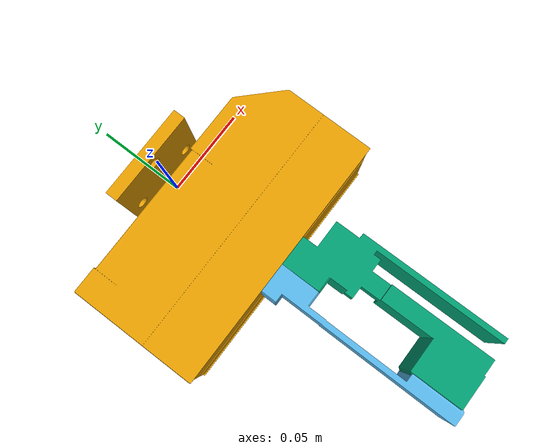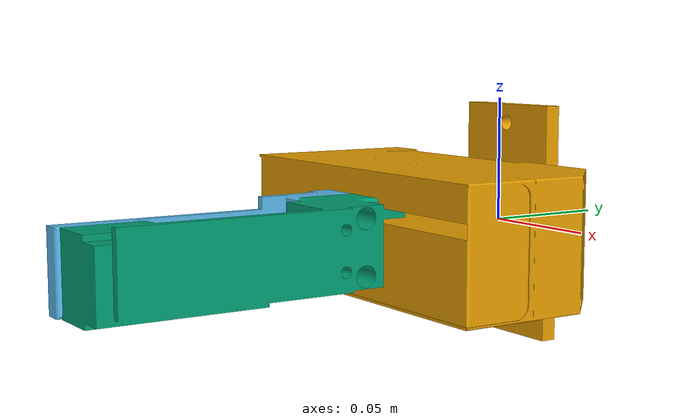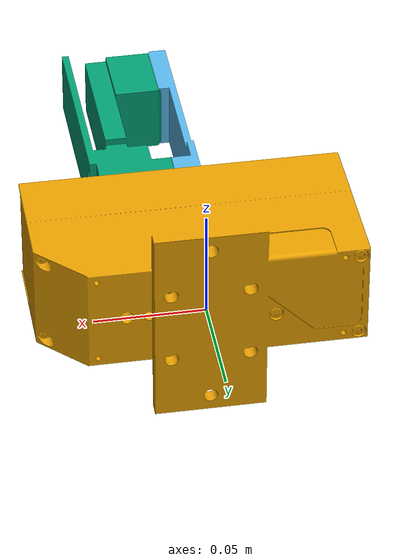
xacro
<?xml version="1.0"?>
<robot xmlns:xacro="http://www.ros.org/wiki/xacro" name="wsg_50">

  <xacro:include filename="$(find schunk_description)/urdf/wsg/visual_collisions.xacro" />

  <link name="palm">
    <inertial>
      <origin xyz="0 0 0" rpy="0 0 0"/>
      <mass value="1"/>
      <inertia ixx="0.01" ixy="0" ixz="0" iyy="0.01" iyz="0" izz="0.01" />
    </inertial>
    <xacro:palm_pretty_visual/>
    <xacro:palm_simple_collision/>
  </link>

  <joint name="wsg_50_finger_left_joint" type="prismatic" >
    <origin xyz="0 -0.0719 0" rpy="0 1.5707 0"/>
    <parent link="palm" />
    <child link="wsg_50_finger_left_link" />
    <axis xyz="0 0 -1" />
  </joint>

  <link name="wsg_50_finger_left_link">
    <inertial>
      <origin xyz="0 0 0" rpy="0 0 0"/>
      <mass value="1"/>
      <inertia ixx="0.01" ixy="0" ixz="0" iyy="0.01" iyz="0" izz="0.01" />
    </inertial>
    <xacro:left_finger_pretty_visual/>
    <xacro:left_finger_simple_collision/>
  </link>

  <joint name="wsg_50_finger_right_joint" type="prismatic" >
    <origin xyz="0 -0.0719 0.0" rpy="3.1415 -1.5707 0"/>
    <parent link="palm" />
    <child link="wsg_50_finger_right_link" />
    <axis xyz="0 0 1" />
  </joint>

  <link name="wsg_50_finger_right_link">
    <inertial>
      <origin xyz="0 0 0" rpy="0 0 0"/>
      <mass value="1"/>
      <inertia ixx="0.01" ixy="0" ixz="0" iyy="0.01" iyz="0" izz="0.01" />
    </inertial>
    <xacro:right_finger_pretty_visual/>
    <xacro:right_finger_simple_collision/>
  </link>

  <!-- extensions -->
  <transmission name="wsg_50_finger_left_trans">
    <type>transmission_interface/SimpleTransmission</type>
    <joint name="wsg_50_finger_left_joint"/>
    <actuator name="wsg_50_finger_left_motor">
      <hardwareInterface>EffortJointInterface</hardwareInterface>
      <mechanicalReduction>1</mechanicalReduction>
    </actuator>
  </transmission>

  <transmission name="wsg_50_finger_right_trans">
    <type>transmission_interface/SimpleTransmission</type>
    <joint name="wsg_50_finger_right_joint"/>
    <actuator name="wsg_50_finger_right_motor">
      <hardwareInterface>EffortJointInterface</hardwareInterface>
      <mechanicalReduction>1</mechanicalReduction>
    </actuator>
  </transmission>

</robot>

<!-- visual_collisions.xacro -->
<robot xmlns:xacro="http://www.ros.org/wiki/xacro" name="wsg_50">

  <!-- MATERIALS -->
  <material name="Blue">
    <color rgba="0 0 1 1"/>
    </material>

    <material name="Red">
      <color rgba="1 0 0 1"/>
    </material>

    <material name="Green">
        <color rgba="0 1 0 1"/>
  </material>

  <material name="Yellow">
    <color rgba="1 1 0 1"/>
    </material>

    <material name="LightGrey">
      <color rgba="0.6 0.6 0.6 1.0"/>
  </material>
    <!-- END OF MATERIALS -->

  <!-- XACRO MACROS FOR VISUALS AND COLLISIONS -->
  <xacro:macro name="visual_offset_box" params="s_x s_y s_z o_x o_y o_z">
    <visual>
      <geometry>
        <box size="${s_x} ${s_y} ${s_z}"/>
      </geometry>
      <origin xyz="${o_x} ${o_y} ${o_z}" rpy="0 0 0"/>
    </visual>
  </xacro:macro>
  <xacro:macro name="collision_offset_box" params="s_x s_y s_z o_x o_y o_z">
    <collision>
      <geometry>
        <box size="${s_x} ${s_y} ${s_z}"/>
      </geometry>
      <origin xyz="${o_x} ${o_y} ${o_z}" rpy="0 0 0"/>
    </collision>
  </xacro:macro>

  <xacro:macro name="palm_pretty_visual" params="">
    <visual>
      <geometry>
        <mesh filename="package://schunk_description/meshes/wsg_50/palm.stl"/>
      </geometry>
    </visual>
  </xacro:macro>
  <xacro:macro name="palm_pretty_collision" params="">
    <collision>
      <geometry>
        <mesh filename="package://schunk_description/meshes/wsg_50/palm.stl"/>
      </geometry>
    </collision>
  </xacro:macro>
  <xacro:macro name="palm_simple_visual" params="">
    <!-- The gripper itself -->
    <xacro:visual_offset_box s_x="0.1453" s_y="0.0725" s_z="0.049" o_x="0.00" o_y="-0.0351" o_z="0.0"/>
    <!-- the larger mounting plate -->
    <xacro:visual_offset_box s_x="0.05" s_y="0.0064" s_z="0.095" o_x="0.00" o_y="0.007" o_z="0"/>
  </xacro:macro>
  <xacro:macro name="palm_simple_collision" params="">
    <!-- The gripper itself -->
    <xacro:collision_offset_box s_x="0.1453" s_y="0.0725" s_z="0.049" o_x="0.00" o_y="-0.0351" o_z="0.0"/>
    <!-- the larger mounting plate -->
    <xacro:collision_offset_box s_x="0.05" s_y="0.0064" s_z="0.095" o_x="0.00" o_y="0.007" o_z="0"/>
  </xacro:macro>

  <xacro:macro name="left_finger_pretty_visual" params="">
    <visual>
      <geometry>
        <mesh filename="package://schunk_description/meshes/wsg_50/finger_without_gelsight.stl"/>
        <material name="mostly_transparent">
          <color rgb="255 255 255" alpha="0.1"/>
        </material>
      </geometry>
    </visual>
  </xacro:macro>
  <xacro:macro name="left_finger_pretty_collision" params="">
    <collision>
      <geometry>
        <mesh filename="package://schunk_description/meshes/wsg_50/finger_without_gelsight.stl"/>
      </geometry>
    </collision>
  </xacro:macro>
  <xacro:macro name="left_finger_simple_visual" params="">
    <xacro:visual_offset_box s_x="0.0365" s_y="0.117" s_z="0.0122" o_x="0.003" o_y="-0.0585" o_z="-0.0106"/>
  </xacro:macro>
  <xacro:macro name="left_finger_simple_collision" params="">
    <xacro:collision_offset_box s_x="0.0365" s_y="0.117" s_z="0.0122" o_x="0.003" o_y="-0.0585" o_z="-0.0106"/>
  </xacro:macro>

  <xacro:macro name="right_finger_pretty_visual" params="">
    <visual>
      <geometry>
        <mesh filename="package://schunk_description/meshes/wsg_50/finger_with_gelsight.stl"/>
      </geometry>
    </visual>
  </xacro:macro>
  <xacro:macro name="right_finger_pretty_collision" params="">
    <collision>
      <geometry>
        <mesh filename="package://schunk_description/meshes/wsg_50/finger_with_gelsight.stl"/>
      </geometry>
    </collision>
  </xacro:macro>
  <xacro:macro name="right_finger_simple_visual" params="">
    <!-- Finger adapter and aluminum adapter block -->
    <xacro:visual_offset_box s_x="0.030" s_y="0.0344" s_z="0.0344" o_x="0.0" o_y="0.0172" o_z="0.0172"/>
    <!-- Stick to gelsight box and backplate / optotrak marker mount -->
    <xacro:visual_offset_box s_x="0.036" s_y="0.0883" s_z="0.0207" o_x="0.0" o_y="0.0750" o_z="0.0250"/>
    <!-- Gelsight box -->
    <xacro:visual_offset_box s_x="0.0318" s_y="0.0318" s_z="0.037" o_x="-0.0055" o_y="0.1005" o_z="0.01231"/>
  </xacro:macro>

  <xacro:macro name="right_finger_simple_collision" params="">
    <!-- Finger adapter and aluminum adapter block -->
    <xacro:collision_offset_box s_x="0.030" s_y="0.0344" s_z="0.0344" o_x="0.0" o_y="0.0172" o_z="0.0172"/>
    <!-- Stick to gelsight box and backplate / optotrak marker mount -->
    <xacro:collision_offset_box s_x="0.036" s_y="0.0883" s_z="0.0207" o_x="0.0" o_y="0.0750" o_z="0.0250"/>
    <!-- Gelsight box -->
    <xacro:collision_offset_box s_x="0.0318" s_y="0.0318" s_z="0.037" o_x="-0.0055" o_y="0.1005" o_z="0.01231"/>
  </xacro:macro>

  <!-- END OF XACRO MACROS -->

</robot>
